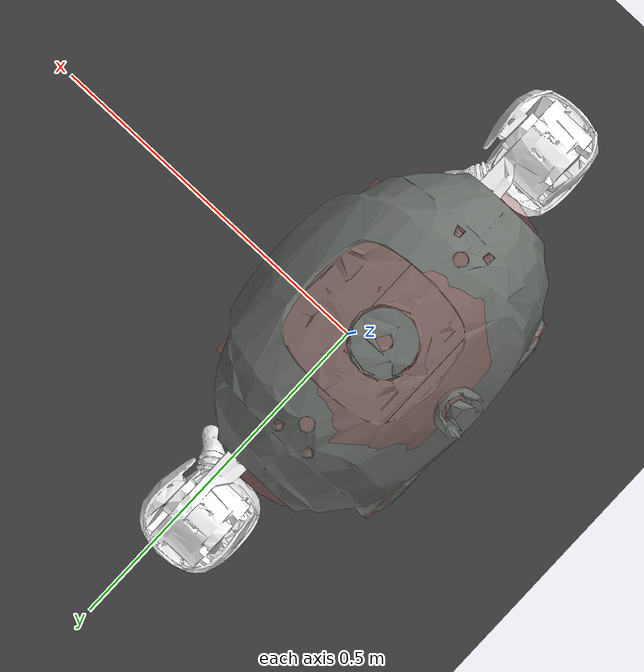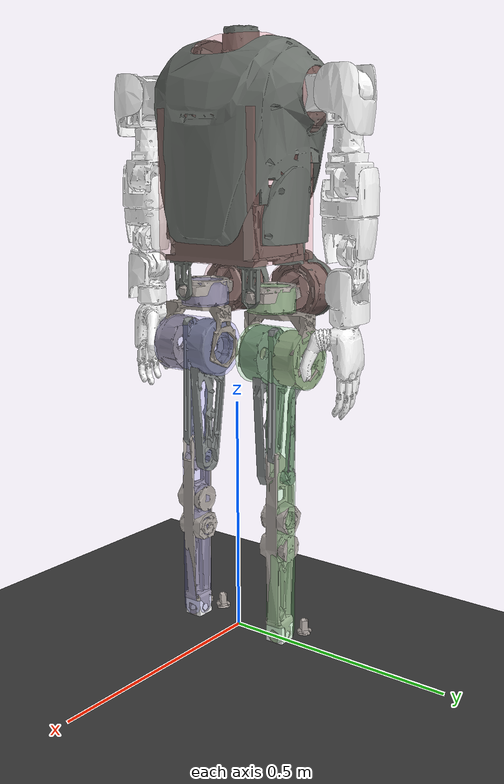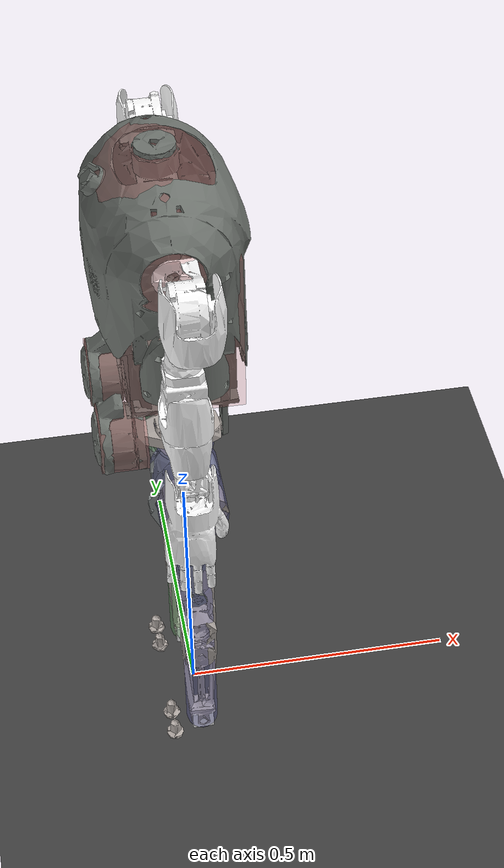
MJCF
<mujoco model="biped_s4">
    <compiler angle="radian" meshdir="../meshes_s40/"/>
    <size njmax="500" nconmax="100"/>
    <option timestep="0.001"/>
    <default>
        <joint limited="true" armature="0.05" damping="0.01"/>
        <motor ctrllimited="true" ctrlrange="-100 100"/>
        <equality solref="0.005 1"/>
        <default class="collision">
            <!-- User parameter for geoms is used to identify collision types -->
            <geom material="collision" contype="4" conaffinity="4" user="2" rgba="0.9 0.3 0.3 0.2"/>
            <default class="collision-left">
                <geom contype="1" conaffinity="2" rgba="0.3 0.9 0.3 0.2"/>
            </default>
            <default class="collision-right">
                <geom contype="2" conaffinity="1" rgba="0.3 0.3 0.9 0.2"/>
            </default>
        </default>
    </default>
    <asset>
        <texture type="skybox" builtin="gradient" width="128" height="128" rgb1="0.4 0.6 0.8" rgb2="0 0 0"/>
        <texture name="plane" type="2d" builtin="checker" rgb1="0.2 0.2 0.2" rgb2="0.3 0.3 0.3" width="512"
                 height="512"/>
        <material name="plane" reflectance="0.0" texture="plane" texrepeat="1 1" texuniform="true"/>
        <material name="collision" rgba="0.1 0.5 0.9 0"/>

        <mesh name="base_link" file="torso.obj"/>
        <mesh name="l_leg_roll" file="l_leg_roll.obj"/>
        <mesh name="l_leg_yaw" file="l_leg_yaw.obj"/>
        <mesh name="l_leg_pitch" file="l_leg_pitch.obj"/>
        <mesh name="l_knee" file="l_knee.obj"/>
        <mesh name="l_foot_pitch" file="l_foot_pitch.obj"/>
        <mesh name="l_foot_roll" file="l_foot_roll.obj"/>
        <mesh name="r_leg_roll" file="r_leg_roll.obj"/>
        <mesh name="r_leg_yaw" file="r_leg_yaw.obj"/>
        <mesh name="r_leg_pitch" file="r_leg_pitch.obj"/>
        <mesh name="r_knee" file="r_knee.obj"/>
        <mesh name="r_foot_pitch" file="r_foot_pitch.obj"/>
        <mesh name="r_foot_roll" file="r_foot_roll.obj"/>
        <mesh name="l_arm_pitch" file="l_arm_pitch.obj"/>
        <mesh name="l_arm_roll" file="l_arm_roll.obj"/>
        <mesh name="l_arm_yaw" file="l_arm_yaw.obj"/>
        <mesh name="l_forearm_pitch" file="l_forearm_pitch.obj"/>
        <mesh name="l_hand_yaw" file="l_hand_yaw.obj"/>
        <mesh name="l_hand_pitch" file="l_hand_pitch.obj"/>
        <mesh name="l_hand_roll" file="l_hand_roll.obj"/>
        <mesh name="r_arm_pitch" file="r_arm_pitch.obj"/>
        <mesh name="r_arm_roll" file="r_arm_roll.obj"/>
        <mesh name="r_arm_yaw" file="r_arm_yaw.obj"/>
        <mesh name="r_forearm_pitch" file="r_forearm_pitch.obj"/>
        <mesh name="r_hand_yaw" file="r_hand_yaw.obj"/>
        <mesh name="r_hand_pitch" file="r_hand_pitch.obj"/>
        <mesh name="r_hand_roll" file="r_hand_roll.obj"/>
    </asset>
    <worldbody>
        <geom name="floor" pos="0.001 0 0" size="100 10 .125" type="plane" material="plane" condim="3"
              conaffinity="15" friction="0.6 0.6 0.001"/>
        <light mode="trackcom" pos="0 0 5" dir="0 0 -1"/>
        <light directional="true" pos="0 0 3" dir="0 0 -1" diffuse="0.2 0.2 0.2" specular="0 0 0"/>

        <body name="base_link" pos="0 0 0.8">
            <site name="imu" pos="0 0 0"/>
            <freejoint/>
            <inertial pos="0.00783143 0.0 0.12722577" quat="1.00000  0.00000  0.00002 -0.00003" mass="20.5675"
                      diaginertia="0.62588371 0.56247677 0.20014604"/>
            <geom type="mesh" contype="0" conaffinity="0" group="1" rgba="0.43137 0.45098 0.43137 1" mesh="base_link"/>
            <geom type="box" size="0.1 0.12 0.15" pos="0 0 0.15" class="collision"/>
            <geom type="ellipsoid" size="0.12 0.2 0.13" pos="-0.02 0 0.32" class="collision"/>
            <body name="leg_l1_link" pos="-0.139 0.088087 -0.065549">
                <inertial pos="0.0661423 -1.19e-06 -0.00862806" quat="-0.00036611 0.685786 0.000388541 0.727803"
                          mass="1.53801" diaginertia="0.00367033 0.00282649 0.00188822"/>
                <joint name="leg_l1_joint" pos="0 0 0" axis="1 0 0" limited="true" range="-0.314 0.663" damping="2"
                       frictionloss="0.05" armature="0.12"/>
                <geom type="mesh" contype="0" conaffinity="0" group="1" rgba="0.6902 0.65882 0.63922 1"
                      mesh="l_leg_roll"/>
                <geom type='cylinder' size='0.06' fromto='-0.01 0 0 0.07 0 0' class='collision'/>
                <body name="leg_l2_link" pos="0.1365 -0.0010866 -0.033901">
                    <inertial pos="0 0.02 -0.132561" quat="1 0 0 0" mass="1.60097"
                              diaginertia="0.0069836 0.00577369 0.00365952"/>
                    <joint name="leg_l2_joint" pos="0 0 0" axis="0 0 1" limited="true" range="-1.04 0.523" damping="0.5"
                           frictionloss="0.02" armature="0.0508"/>
                    <geom type="mesh" contype="0" conaffinity="0" group="1" rgba="0.65098 0.61961 0.58824 1"
                          mesh="l_leg_yaw"/>
                    <geom type='cylinder' size='0.05' fromto='0 0 0 0 0 0.05' class='collision-left'/>
                    <body name="leg_l3_link" pos="0 0.094 -0.09">
                        <inertial pos="-0.00644903 -0.0981356 -0.0535761" quat="1 0 0 1" mass="2.754271"
                                  diaginertia="0.0233349 0.022619 0.00397939"/>
                        <joint name="leg_l3_joint" pos="0 0 0" axis="0 1 0" limited="true" range="-1.83 1.04"
                               damping="0.2" frictionloss="0.02" armature="0.0508"/>
                        <geom type="mesh" contype="0" conaffinity="0" group="1" rgba="0.52941 0.54902 0.54902 1"
                              mesh="l_leg_pitch"/>
                        <geom type='cylinder' size='0.06' fromto='0 -0.14 0 0 0.00 0' class='collision-left'/>
                        <geom type='capsule' size='0.03' fromto='0 -0.07 0 0 -0.07 -0.25' class='collision-left'/>
                        <body name="leg_l4_link" pos="0.004136 -0.06635 -0.24997">
                            <inertial pos="0.00080045 -4.225e-05 -0.120497"
                                      quat="0.708481 -0.000629386 -0.0108666 0.705646" mass="1.77331554"
                                      diaginertia="0.013595 0.0134393 0.000915523"/>
                            <joint name="leg_l4_joint" pos="0 0 0" axis="0 1 0" limited="true" range="0 2.18"
                                   damping="0.2" frictionloss="0.02" armature="0.0508"/>
                            <geom type="mesh" contype="0" conaffinity="0" group="1" rgba="0.68627 0.65882 0.63922 1"
                                  mesh="l_knee"/>
                            <geom type='capsule' size='0.03' fromto='0 0 0 0 0 -0.34' class='collision-left'/>
                            <body name="leg_l5_link" pos="0 -0.0022 -0.346">
                                <inertial pos="0 -0.0209998 0" mass="0.0544445"
                                          diaginertia="1.37e-06 1.37e-06 1.37e-06"/>
                                <joint name="leg_l5_joint" pos="0 0 0" axis="0 1 0" limited="true" range="-0.786 0.270"
                                       damping="1" frictionloss="0.05" armature="0.05"/>
                                <geom type="mesh" contype="0" conaffinity="0" group="1" rgba="0.6902 0.65882 0.63922 1"
                                      mesh="l_foot_pitch"/>
                                <body name="leg_l6_link" pos="0 0 0">
                                    <site name="l_ft_frame" pos="0 0 0" size="0.02 0.02 0.02" rgba="1 1 1 1" type="box"
                                          group="1"/>
                                    <inertial pos="0.0355077 9.71466e-06 -0.0272597" quat="0 1 0 1" mass="0.470217"
                                              diaginertia="0.00146681 0.00133526 0.000364416"/>
                                    <joint name="leg_l6_joint" pos="0 0 0" axis="1 0 0" limited="true"
                                           range="-0.78 0.78" damping="1" frictionloss="0.05" armature="0.05"/>
                                    <geom type="mesh" contype="0" conaffinity="0" group="1"
                                          rgba="0.6902 0.65882 0.63922 1" mesh="l_foot_roll"/>
                                    <geom type="box" size="0.09 0.04 0.005" pos="0.01 0 -0.04" class="collision-left"/>
                                </body>
                            </body>
                        </body>
                    </body>
                </body>
            </body>
            <body name="leg_r1_link" pos="-0.139 -0.088087 -0.065549">
                <inertial pos="0.0661423 1.19e-06 -0.00862806" quat="0.000366114 0.685786 -0.000388545 0.727803"
                          mass="1.53801" diaginertia="0.00367033 0.00282649 0.00188822"/>
                <joint name="leg_r1_joint" pos="0 0 0" axis="1 0 0" limited="true" range="-0.663 0.314" damping="2"
                       frictionloss="0.05" armature="0.12"/>
                <geom type="mesh" contype="0" conaffinity="0" group="1" rgba="0.6902 0.65882 0.63922 1"
                      mesh="r_leg_roll"/>
                <geom type='cylinder' size='0.06' fromto='-0.01 0 0 0.07 0 0' class='collision'/>
                <body name="leg_r2_link" pos="0.1365 0.0010866 -0.033901">
                    <inertial pos="0 -0.02 -0.132574" quat="1 0 0 0" mass="1.60097"
                              diaginertia="0.0069836 0.00577369 0.00365952"/>
                    <joint name="leg_r2_joint" pos="0 0 0" axis="0 0 1" limited="true" range="-0.523 1.04" damping="0.5"
                           frictionloss="0.02" armature="0.0508"/>
                    <geom type="mesh" contype="0" conaffinity="0" group="1" rgba="0.65098 0.619608 0.588235 1"
                          mesh="r_leg_yaw"/>
                    <geom type='cylinder' size='0.05' fromto='0 0 0 0 0 0.05' class='collision-right'/>
                    <body name="leg_r3_link" pos="0 -0.094 -0.09">
                        <inertial pos="-0.00644903 0.0981356 -0.0535761" quat="1 0 0 1" mass="2.75427141"
                                  diaginertia="0.0233349 0.022619 0.00397939"/>
                        <joint name="leg_r3_joint" pos="0 0 0" axis="0 1 0" limited="true" range="-1.83 1.04"
                               damping="0.2" frictionloss="0.02" armature="0.0508"/>
                        <geom type="mesh" contype="0" conaffinity="0" group="1" rgba="0.529412 0.54902 0.54902 1"
                              mesh="r_leg_pitch"/>
                        <geom type='cylinder' size='0.06' fromto='0 0.14 0 0 0.00 0' class='collision-right'/>
                        <geom type='capsule' size='0.03' fromto='0 0.07 0 0 0.07 -0.25' class='collision-right'/>
                        <body name="leg_r4_link" pos="0.004136 0.06635 -0.24997">
                            <inertial pos="0.00080045 4.225e-05 -0.120497"
                                      quat="0.705646 -0.0108666 -0.000629386 0.708481" mass="1.77331554"
                                      diaginertia="0.013595 0.0134393 0.000915523"/>
                            <joint name="leg_r4_joint" pos="0 0 0" axis="0 1 0" limited="true" range="0 2.18"
                                   damping="0.2" frictionloss="0.02" armature="0.0508"/>
                            <geom type="mesh" contype="0" conaffinity="0" group="1" rgba="0.686275 0.658824 0.639216 1"
                                  mesh="r_knee"/>
                            <geom type='capsule' size='0.03' fromto='0 0 0 0 0 -0.34' class='collision-right'/>
                            <body name="leg_r5_link" pos="0 0.0022 -0.346">
                                <inertial pos="0 0.0210002 0" mass="0.0544445"
                                          diaginertia="1.37e-06 1.37e-06 1.37e-06"/>
                                <joint name="leg_r5_joint" pos="0 0 0" axis="0 1 0" limited="true" range="-0.786 0.270"
                                       damping="1" frictionloss="0.05" armature="0.05"/>
                                <geom type="mesh" contype="0" conaffinity="0" group="1"
                                      rgba="0.690196 0.658824 0.639216 1" mesh="r_foot_pitch"/>
                                <body name="leg_r6_link" pos="0 0 0">
                                    <site name="r_ft_frame" pos="0 0 0" size="0.02 0.02 0.02" rgba="1 1 1 1" type="box"
                                          group="1"/>
                                    <inertial pos="0.0355078 -9.65506e-06 -0.0272597" quat="0 1 0 1" mass="0.470217"
                                              diaginertia="0.00146681 0.00133526 0.000364416"/>
                                    <joint name="leg_r6_joint" pos="0 0 0" axis="1 0 0" limited="true"
                                           range="-0.78 0.78" damping="1" frictionloss="0.05" armature="0.05"/>
                                    <geom type="mesh" contype="0" conaffinity="0" group="1"
                                          rgba="0.690196 0.658824 0.639216 1" mesh="r_foot_roll"/>
                                    <geom type="box" size="0.09 0.04 0.005" pos="0.01 0 -0.04" class="collision-right"/>
                                </body>
                            </body>
                        </body>
                    </body>
                </body>
            </body>
            <body name="zarm_l1_link" pos="-0.0175476 0.2547 0.3245">
                <inertial pos="0.0146835 -0.0166604 -6.82857e-05" quat="0.696586 0.712206 -0.0625859 -0.0601207"
                          mass="0.794" diaginertia="0.000271947 0.000196224 0.000121256"/>
                <joint name="zarm_l1_joint" pos="0 0 0" axis="0 1 0" range="-2.0933 0.5233" damping="0.2"/>
                <geom type="mesh" contype="0" conaffinity="0" group="1" density="0" rgba="1 1 1 1" mesh="l_arm_pitch"/>
                <body name="zarm_l2_link">
                    <inertial pos="0.0222873 0.0156946 -0.0202262" quat="0.398328 0.58059 0.26378 0.659295"
                              mass="0.20735" diaginertia="0.000283338 0.000217951 0.000157462"/>
                    <joint name="zarm_l2_joint" pos="0 0 0" axis="1 0 0" range="-0.3489 2.0933" damping="0.2"/>
                    <geom type="mesh" contype="0" conaffinity="0" group="1" density="0" rgba="1 1 1 1"
                          mesh="l_arm_roll"/>
                    <body name="zarm_l3_link">
                        <inertial pos="6.1694e-05 0.00525815 -0.128822" quat="0.237126 0.666158 0.237177 0.666147"
                                  mass="1.120632" diaginertia="9.38963e-05 7.96873e-05 7.00576e-05"/>
                        <joint name="zarm_l3_joint" pos="0 0 0" axis="0 0 1" range="-1.57 1.57" damping="0.2"/>
                        <geom type="mesh" contype="0" conaffinity="0" group="1" density="0" rgba="1 1 1 1"
                              mesh="l_arm_yaw"/>
                        <body name="zarm_l4_link" pos="0 0 -0.1636">
                            <inertial pos="-1.42819e-05 0.00938314 -0.0522688"
                                      quat="0.632873 0.313955 0.634285 0.313985" mass="0.395825"
                                      diaginertia="0.00013362 0.000113739 9.55807e-05"/>
                            <joint name="zarm_l4_joint" pos="0 0 0" axis="0 1 0" range="-2.0933 0.5236" damping="0.2"/>
                            <geom type="mesh" contype="0" conaffinity="0" group="1" density="0" rgba="1 1 1 1"
                                  mesh="l_forearm_pitch"/>
                            <body name="zarm_l5_link" pos="0 0 -0.19105">
                                <inertial pos="0.000113133 0.00969228 0.0817961"
                                          quat="0.493085 0.506908 0.492087 0.507703" mass="0.380792"
                                          diaginertia="0.000122264 8.44608e-05 7.64924e-05"/>
                                <joint name="zarm_l5_joint" pos="0 0 0" axis="0 0 1" range="-1.57 1.57"
                                       damping="0.2"/>
                                <geom type="mesh" contype="0" conaffinity="0" group="1" density="0" rgba="1 1 1 1"
                                      mesh="l_hand_yaw"/>
                                <body name="zarm_l6_link">
                                    <inertial pos="0.0081061 0.00489663 0.00622489"
                                              quat="0.972746 -0.202646 -0.0967872 0.0577326" mass="0.376651"
                                              diaginertia="4.90153e-05 3.61802e-05 2.19136e-05"/>
                                    <joint name="zarm_l6_joint" pos="0 0 0" axis="0 1 0" range="-1.57 1.57"
                                           damping="0.2"/>
                                    <geom type="mesh" contype="0" conaffinity="0" group="1" density="0" rgba="1 1 1 1"
                                          mesh="l_hand_pitch"/>
                                    <body name="zarm_l7_link">
                                        <inertial pos="0.00556925 0.00646694 -0.0826632"
                                                  quat="0.349337 0.589226 0.263714 0.67914" mass="0.704669"
                                                  diaginertia="0.000125371 0.000104468 8.03788e-05"/>
                                        <joint name="zarm_l7_joint" pos="0 0 0" axis="1 0 0" range="-1.57 1.57"
                                               damping="0.2"/>
                                        <geom type="mesh" contype="0" conaffinity="0" group="1" density="0"
                                              rgba="1 1 1 1" mesh="l_hand_roll"/>
                                        <geom size="0.005" pos="0 0 -0.12"/>
                                    </body>
                                </body>
                            </body>
                        </body>
                    </body>
                </body>
            </body>
            <body name="zarm_r1_link" pos="-0.0175476 -0.2547 0.3245">
                <inertial pos="0.0146744 0.0168298 -8.16712e-05" quat="0.712375 0.696324 0.0605536 0.0631598"
                          mass="0.794" diaginertia="0.000271946 0.000196219 0.000121103"/>
                <joint name="zarm_r1_joint" pos="0 0 0" axis="0 1 0" range="-2.0933 0.5233" damping="0.2"/>
                <geom type="mesh" contype="0" conaffinity="0" group="1" density="0" rgba="1 1 1 1" mesh="r_arm_pitch"/>
                <body name="zarm_r2_link">
                    <inertial pos="0.0223009 -0.015695 -0.0202308" quat="0.65931 0.264022 0.580473 0.398313"
                              mass="0.20735" diaginertia="0.000283519 0.000218099 0.000157689"/>
                    <joint name="zarm_r2_joint" pos="0 0 0" axis="1 0 0" range="-2.0933 0.3489" damping="0.2"/>
                    <geom type="mesh" contype="0" conaffinity="0" group="1" density="0" rgba="1 1 1 1"
                          mesh="r_arm_roll"/>
                    <body name="zarm_r3_link">
                        <inertial pos="-4.82749e-05 -0.00525815 -0.128822" quat="-0.237177 0.666147 -0.237126 0.666158"
                                  mass="1.120632" diaginertia="9.38963e-05 7.96873e-05 7.00576e-05"/>
                        <joint name="zarm_r3_joint" pos="0 0 0" axis="0 0 1" range="-1.57 1.57" damping="0.2"/>
                        <geom type="mesh" contype="0" conaffinity="0" group="1" density="0" rgba="1 1 1 1"
                              mesh="r_arm_yaw"/>
                        <body name="zarm_r4_link" pos="0 0 -0.1636">
                            <inertial pos="-0.000127233 -0.00951603 -0.0522688"
                                      quat="0.314696 0.632501 0.314725 0.633922" mass="0.395825"
                                      diaginertia="0.000133455 0.000113904 9.55807e-05"/>
                            <joint name="zarm_r4_joint" pos="0 0 0" axis="0 1 0" range="-2.0933 0.5236" damping="0.2"/>
                            <geom type="mesh" contype="0" conaffinity="0" group="1" density="0" rgba="1 1 1 1"
                                  mesh="r_forearm_pitch"/>
                            <body name="zarm_r5_link" pos="0 0 -0.19105">
                                <inertial pos="-0.000113133 -0.00974484 0.0817961"
                                          quat="0.506908 0.493085 0.507703 0.492087" mass="0.380792"
                                          diaginertia="0.000122264 8.44608e-05 7.64924e-05"/>
                                <joint name="zarm_r5_joint" pos="0 0 0" axis="0 0 1" range="-1.57 1.57"
                                       damping="0.2"/>
                                <geom type="mesh" contype="0" conaffinity="0" group="1" density="0" rgba="1 1 1 1"
                                      mesh="r_hand_yaw"/>
                                <body name="zarm_r6_link">
                                    <inertial pos="0.00735987 -0.00475238 0.00605888"
                                              quat="0.97227 0.205866 -0.0962427 -0.0552063" mass="0.376651"
                                              diaginertia="4.89785e-05 3.6108e-05 2.20226e-05"/>
                                    <joint name="zarm_r6_joint" pos="0 0 0" axis="0 1 0" range="-1.57 1.57"
                                           damping="0.2"/>
                                    <geom type="mesh" contype="0" conaffinity="0" group="1" density="0" rgba="1 1 1 1"
                                          mesh="r_hand_pitch"/>
                                    <body name="zarm_r7_link">
                                        <inertial pos="0.0045897 -0.0058632 -0.0836701"
                                                  quat="0.682455 0.258192 0.586794 0.351091" mass="0.704669"
                                                  diaginertia="0.000246474 0.000204705 0.000159601"/>
                                        <joint name="zarm_r7_joint" pos="0 0 0" axis="1 0 0" range="-1.57 1.57"
                                               damping="0.2"/>
                                        <geom type="mesh" contype="0" conaffinity="0" group="1" density="0"
                                              rgba="1 1 1 1" mesh="r_hand_roll"/>
                                        <geom size="0.005" pos="0 0 -0.12"/>
                                    </body>
                                </body>
                            </body>
                        </body>
                    </body>
                </body>
            </body>
        </body>
    </worldbody>
    <actuator>
        <motor gear="1" joint="leg_l1_joint" name="leg_l1_motor" ctrllimited="true" ctrlrange='-80 80'/>
        <motor gear="1" joint="leg_l2_joint" name="leg_l2_motor" ctrllimited="true" ctrlrange='-80 80'/>
        <motor gear="1" joint="leg_l3_joint" name="leg_l3_motor" ctrllimited="true" ctrlrange='-80 80'/>
        <motor gear="1" joint="leg_l4_joint" name="leg_l4_motor" ctrllimited="true" ctrlrange='-80 80'/>
        <motor gear="1" joint="leg_l5_joint" name="leg_l5_motor" ctrllimited="true" ctrlrange='-60 60'/>
        <motor gear="1" joint="leg_l6_joint" name="leg_l6_motor" ctrllimited="true" ctrlrange='-60 60'/>

        <motor gear="1" joint="leg_r1_joint" name="leg_r1_motor" ctrllimited="true" ctrlrange='-80 80'/>
        <motor gear="1" joint="leg_r2_joint" name="leg_r2_motor" ctrllimited="true" ctrlrange='-80 80'/>
        <motor gear="1" joint="leg_r3_joint" name="leg_r3_motor" ctrllimited="true" ctrlrange='-80 80'/>
        <motor gear="1" joint="leg_r4_joint" name="leg_r4_motor" ctrllimited="true" ctrlrange='-80 80'/>
        <motor gear="1" joint="leg_r5_joint" name="leg_r5_motor" ctrllimited="true" ctrlrange='-60 60'/>
        <motor gear="1" joint="leg_r6_joint" name="leg_r6_motor" ctrllimited="true" ctrlrange='-60 60'/>

        <motor gear="1" joint="zarm_l1_joint" name="zarm_l1_motor" ctrllimited="true" ctrlrange='-5 5'/>
        <motor gear="1" joint="zarm_l2_joint" name="zarm_l2_motor" ctrllimited="true" ctrlrange='-5 5'/>
        <motor gear="1" joint="zarm_l3_joint" name="zarm_l3_motor" ctrllimited="true" ctrlrange='-5 5'/>
        <motor gear="1" joint="zarm_l4_joint" name="zarm_l4_motor" ctrllimited="true" ctrlrange='-5 5'/>
        <motor gear="1" joint="zarm_l5_joint" name="zarm_l5_motor" ctrllimited="true" ctrlrange='-5 5'/>
        <motor gear="1" joint="zarm_l6_joint" name="zarm_l6_motor" ctrllimited="true" ctrlrange='-5 5'/>
        <motor gear="1" joint="zarm_l7_joint" name="zarm_l7_motor" ctrllimited="true" ctrlrange='-5 5'/>

        <motor gear="1" joint="zarm_r1_joint" name="zarm_r1_motor" ctrllimited="true" ctrlrange='-5 5'/>
        <motor gear="1" joint="zarm_r2_joint" name="zarm_r2_motor" ctrllimited="true" ctrlrange='-5 5'/>
        <motor gear="1" joint="zarm_r3_joint" name="zarm_r3_motor" ctrllimited="true" ctrlrange='-5 5'/>
        <motor gear="1" joint="zarm_r4_joint" name="zarm_r4_motor" ctrllimited="true" ctrlrange='-5 5'/>
        <motor gear="1" joint="zarm_r5_joint" name="zarm_r5_motor" ctrllimited="true" ctrlrange='-5 5'/>
        <motor gear="1" joint="zarm_r6_joint" name="zarm_r6_motor" ctrllimited="true" ctrlrange='-5 5'/>
        <motor gear="1" joint="zarm_r7_joint" name="zarm_r7_motor" ctrllimited="true" ctrlrange='-5 5'/>
    </actuator>
    <sensor>
        <accelerometer name="BodyAcc" site="imu"/>
        <velocimeter name="BodyVel" site="imu"/>
        <gyro name="BodyGyro" site="imu"/>
        <framepos name="BodyPos" objtype="site" objname="imu"/>
        <framequat name="BodyQuat" objtype="site" objname="imu"/>
        <force name="l_force" site="l_ft_frame"/>
        <torque name="l_torque" site="l_ft_frame"/>
        <force name="r_force" site="r_ft_frame"/>
        <torque name="r_torque" site="r_ft_frame"/>
        <jointpos name="leg_l1_pos" joint="leg_l1_joint"/>
        <jointpos name="leg_l2_pos" joint="leg_l2_joint"/>
        <jointpos name="leg_l3_pos" joint="leg_l3_joint"/>
        <jointpos name="leg_l4_pos" joint="leg_l4_joint"/>
        <jointpos name="leg_l5_pos" joint="leg_l5_joint"/>
        <jointpos name="leg_l6_pos" joint="leg_l6_joint"/>

        <jointpos name="leg_r1_pos" joint="leg_r1_joint"/>
        <jointpos name="leg_r2_pos" joint="leg_r2_joint"/>
        <jointpos name="leg_r3_pos" joint="leg_r3_joint"/>
        <jointpos name="leg_r4_pos" joint="leg_r4_joint"/>
        <jointpos name="leg_r5_pos" joint="leg_r5_joint"/>
        <jointpos name="leg_r6_pos" joint="leg_r6_joint"/>

        <jointpos name="zarm_l1_pos" joint="zarm_l1_joint"/>
        <jointpos name="zarm_l2_pos" joint="zarm_l2_joint"/>
        <jointpos name="zarm_l3_pos" joint="zarm_l3_joint"/>
        <jointpos name="zarm_l4_pos" joint="zarm_l4_joint"/>
        <jointpos name="zarm_l5_pos" joint="zarm_l5_joint"/>
        <jointpos name="zarm_l6_pos" joint="zarm_l6_joint"/>
        <jointpos name="zarm_l7_pos" joint="zarm_l7_joint"/>

        <jointpos name="zarm_r1_pos" joint="zarm_r1_joint"/>
        <jointpos name="zarm_r2_pos" joint="zarm_r2_joint"/>
        <jointpos name="zarm_r3_pos" joint="zarm_r3_joint"/>
        <jointpos name="zarm_r4_pos" joint="zarm_r4_joint"/>
        <jointpos name="zarm_r5_pos" joint="zarm_r5_joint"/>
        <jointpos name="zarm_r6_pos" joint="zarm_r6_joint"/>
        <jointpos name="zarm_r7_pos" joint="zarm_r7_joint"/>

        <jointvel name="leg_l1_vel" joint="leg_l1_joint"/>
        <jointvel name="leg_l2_vel" joint="leg_l2_joint"/>
        <jointvel name="leg_l3_vel" joint="leg_l3_joint"/>
        <jointvel name="leg_l4_vel" joint="leg_l4_joint"/>
        <jointvel name="leg_l5_vel" joint="leg_l5_joint"/>
        <jointvel name="leg_l6_vel" joint="leg_l6_joint"/>

        <jointvel name="leg_r1_vel" joint="leg_r1_joint"/>
        <jointvel name="leg_r2_vel" joint="leg_r2_joint"/>
        <jointvel name="leg_r3_vel" joint="leg_r3_joint"/>
        <jointvel name="leg_r4_vel" joint="leg_r4_joint"/>
        <jointvel name="leg_r5_vel" joint="leg_r5_joint"/>
        <jointvel name="leg_r6_vel" joint="leg_r6_joint"/>

        <jointvel name="zarm_l1_vel" joint="zarm_l1_joint"/>
        <jointvel name="zarm_l2_vel" joint="zarm_l2_joint"/>
        <jointvel name="zarm_l3_vel" joint="zarm_l3_joint"/>
        <jointvel name="zarm_l4_vel" joint="zarm_l4_joint"/>
        <jointvel name="zarm_l5_vel" joint="zarm_l5_joint"/>
        <jointvel name="zarm_l6_vel" joint="zarm_l6_joint"/>
        <jointvel name="zarm_l7_vel" joint="zarm_l7_joint"/>

        <jointvel name="zarm_r1_vel" joint="zarm_r1_joint"/>
        <jointvel name="zarm_r2_vel" joint="zarm_r2_joint"/>
        <jointvel name="zarm_r3_vel" joint="zarm_r3_joint"/>
        <jointvel name="zarm_r4_vel" joint="zarm_r4_joint"/>
        <jointvel name="zarm_r5_vel" joint="zarm_r5_joint"/>
        <jointvel name="zarm_r6_vel" joint="zarm_r6_joint"/>
        <jointvel name="zarm_r7_vel" joint="zarm_r7_joint"/>

    </sensor>

</mujoco>
